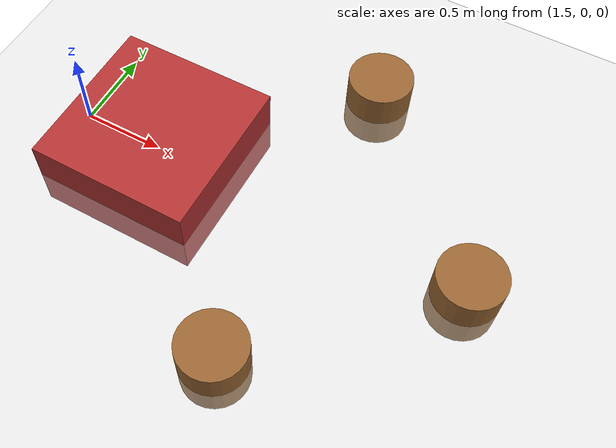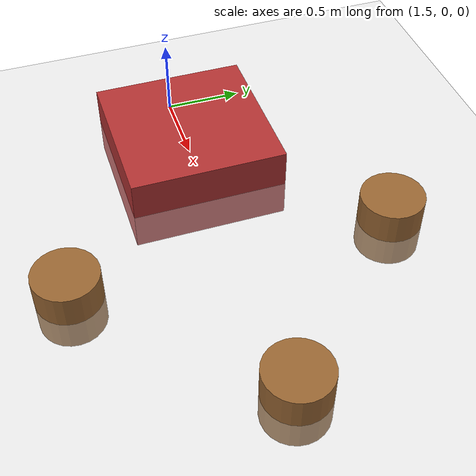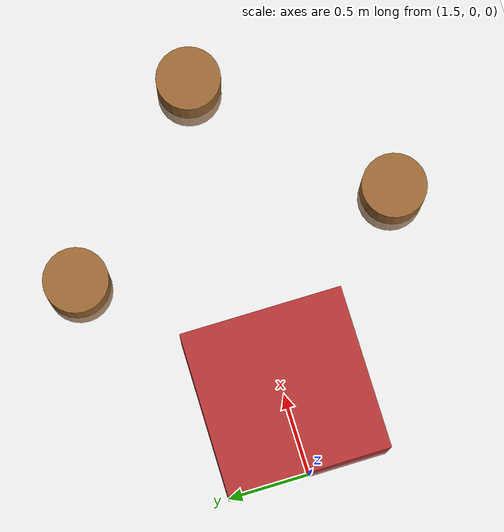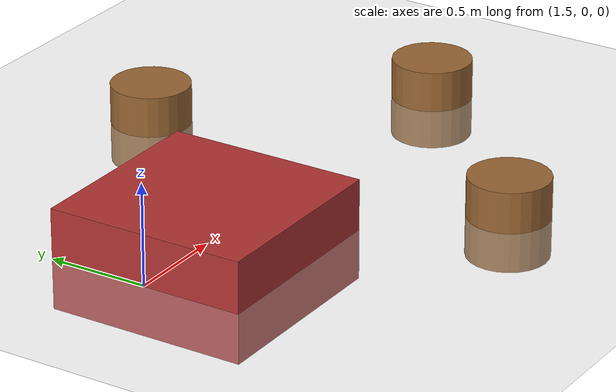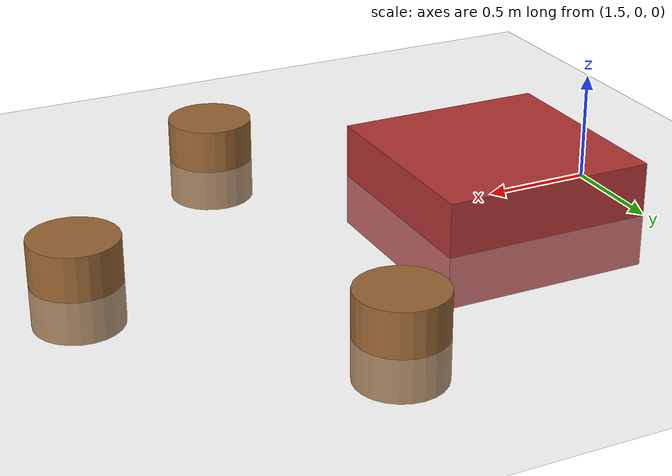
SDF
<sdf version="1.6">
 <world name="butler_cafe">
  <include><uri>model://ground_plane</uri><static>true</static></include>
  <model name="kitchen">
   <static>true</static>
   <pose>2 0 0 0 0 0</pose>
   <link name="body">
    <visual name="visual">
     <geometry><box><size>1 1 0.5</size></box></geometry>
     <material><ambient>0.7 0.2 0.2 1</ambient></material>
    </visual>
    <collision name="collision"><geometry><box><size>1 1 0.5</size></box></geometry></collision>
   </link>
  </model>
  <model name="table1">
   <static>true</static>
   <pose>3 1 0 0 0 0</pose>
   <link name="body">
    <visual name="visual">
     <geometry><cylinder><radius>0.2</radius><length>0.4</length></cylinder></geometry>
     <material><ambient>0.6 0.4 0.2 1</ambient></material>
    </visual>
    <collision name="collision">
     <geometry><cylinder><radius>0.2</radius><length>0.4</length></cylinder></geometry>
    </collision>
   </link>
  </model>
  <model name="table2">
   <static>true</static>
   <pose>3 -1 0 0 0 0</pose>
   <link name="body">
    <visual name="visual">
     <geometry><cylinder><radius>0.2</radius><length>0.4</length></cylinder></geometry>
     <material><ambient>0.6 0.4 0.2 1</ambient></material>
    </visual>
    <collision name="collision">
     <geometry><cylinder><radius>0.2</radius><length>0.4</length></cylinder></geometry>
    </collision>
   </link>
  </model>
  <model name="table3">
   <static>true</static>
   <pose>4 0 0 0 0 0</pose>
   <link name="body">
    <visual name="visual">
     <geometry><cylinder><radius>0.2</radius><length>0.4</length></cylinder></geometry>
     <material><ambient>0.6 0.4 0.2 1</ambient></material>
    </visual>
    <collision name="collision">
     <geometry><cylinder><radius>0.2</radius><length>0.4</length></cylinder></geometry>
    </collision>
   </link>
  </model>
 </world>
</sdf>
